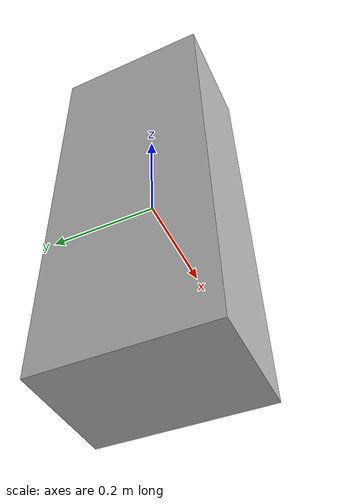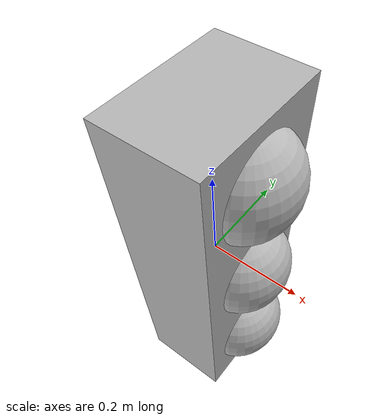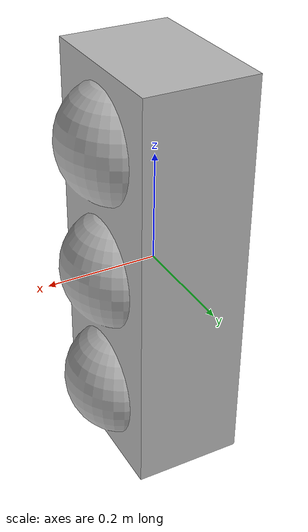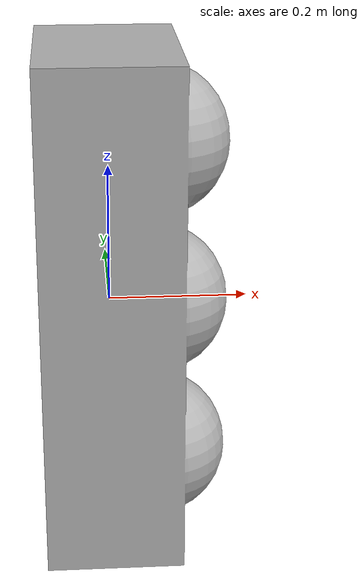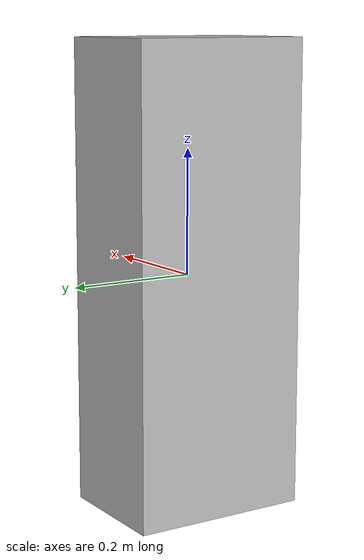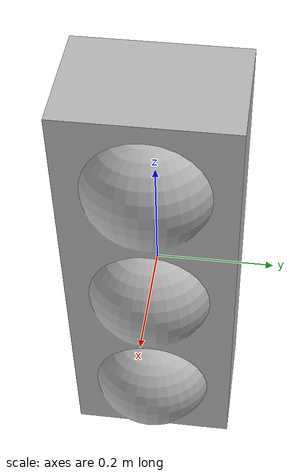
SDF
<?xml version="1.0" ?>
<sdf version="1.6">
  <model name="traffic_light_all">
    <pose>0 0 0 0 0 0</pose>
    <static>true</static>
    <link name="link">
      <visual name="visual">
        <geometry>
          <mesh>
            <uri>file:///home/safa/yoda_ws/src/yoda_cpp_package/meshes/kirmizisariyesil.dae</uri>
            <scale>0.1 0.1 0.1</scale>
          </mesh>
        </geometry>
      </visual>
      <collision name="collision">
        <geometry>
          <mesh>
            <uri>file:///home/safa/yoda_ws/src/yoda_cpp_package/meshes/kirmizisariyesil.dae</uri>
            <scale>0.1 0.1 0.1</scale>
          </mesh>
        </geometry>
      </collision>
      <pose>0 0 0 0 0 0</pose>
    </link>
    <pose>0 0 0 0 0 0</pose>
    <static>true</static>
  </model>
</sdf>
